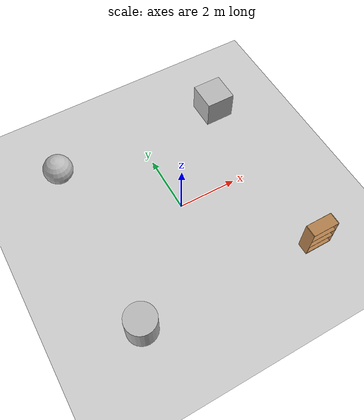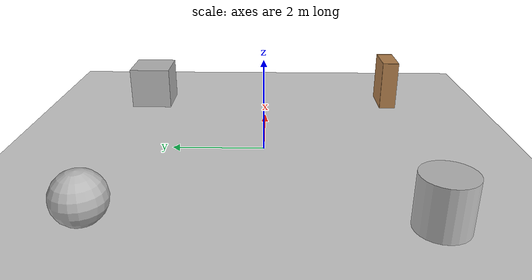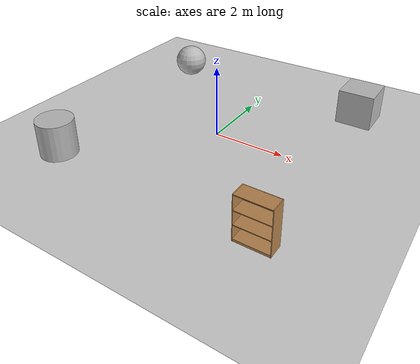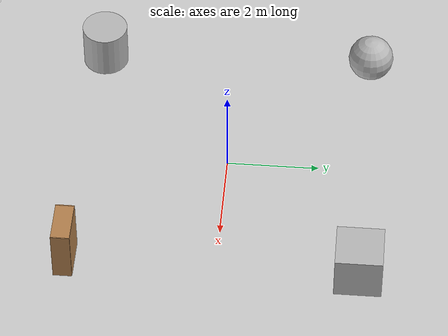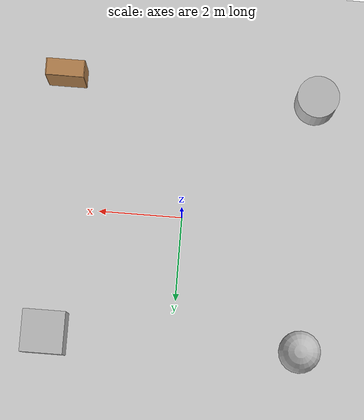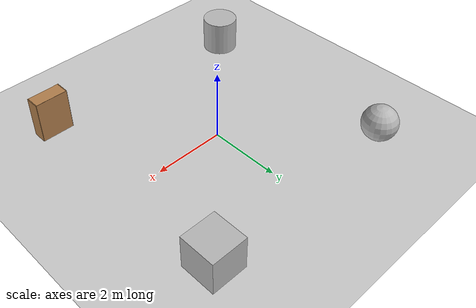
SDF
<sdf version='1.4'>
  <world name='default'>
    <physics type="ode">
      <gravity>0 0 -9.81</gravity>
      <ode>
        <solver>
          <type>quick</type>
          <iters>50</iters>
          <sor>1.4</sor>
        </solver>
        <constraints>
          <cfm>0.0</cfm>
          <erp>0.2</erp>
          <contact_max_correcting_vel>100.0</contact_max_correcting_vel>
          <contact_surface_layer>0.0</contact_surface_layer>
        </constraints>
      </ode>
      <real_time_update_rate>1000.0</real_time_update_rate>
      <max_step_size>0.001</max_step_size>
    </physics>
    <!-- A global light source -->
    <include>
      <uri>model://sun</uri>
    </include>
    <!-- A ground plane -->
    <include>
      <uri>model://ground_plane</uri>
    </include>
    <model name="box">
      <static>1</static>
      <pose>3.0 3.0 0.5 0 0 0</pose>
      <link name="link">
        <collision name="collision">
          <geometry>
            <box>
              <size>1 1 1</size>
            </box>
          </geometry>
        </collision>
        <visual name="visual">
          <geometry>
            <box>
              <size>1 1 1</size>
            </box>
          </geometry>
          <material>
              <uri>file://media/materials/scripts/gazebo.material</uri>
              <name>Gazebo/Wood</name>
          </material>
        </visual>
      </link>
    </model>
    <model name="sphere">
      <static>1</static>
      <pose>-3.0 3.0 0.5 0 0 0</pose>
      <link name="link">
        <collision name="collision">
          <geometry>
            <sphere>
              <radius>0.5</radius>
            </sphere>
          </geometry>
        </collision>
        <visual name="visual">
          <geometry>
            <sphere>
              <radius>0.5</radius>
            </sphere>
          </geometry>
          <material>
            <script>Gazebo/WoodPallet</script>
          </material>
        </visual>
      </link>
    </model>
    <model name="cylinder">
      <static>1</static>
      <pose>-3.0 -3.0 0.5 0 0 0</pose>
      <link name="link">
        <collision name="collision">
          <geometry>
            <cylinder>
              <radius>0.5</radius>
              <length>1.0</length>
            </cylinder>
          </geometry>
        </collision>
        <visual name="visual">
          <geometry>
            <cylinder>
              <radius>0.5</radius>
              <length>1.0</length>
            </cylinder>
          </geometry>
          <material>
              <uri>file://media/materials/scripts/gazebo.material</uri>
              <name>Gazebo/Wood</name>
          </material>
        </visual>
      </link>
    </model>
    <model name='bookshelf'>
      <static>1</static>
      <pose>3.0 -3.0 0.0 0 0 0</pose>
      <link name='link'>
        <inertial>
          <mass>1</mass>
        </inertial>
        <collision name='back'>
          <pose>0 0.005 0.6 0 -0 0</pose>
          <geometry>
            <box>
              <size>0.9 0.01 1.2</size>
            </box>
          </geometry>
          <max_contacts>10</max_contacts>
          <surface>
            <bounce/>
            <friction>
              <ode/>
            </friction>
            <contact>
              <ode/>
            </contact>
          </surface>
        </collision>
        <visual name='visual1'>
          <pose>0 0.005 0.6 0 -0 0</pose>
          <geometry>
            <box>
              <size>0.9 0.01 1.2</size>
            </box>
          </geometry>
          <material>
            <script>
              <uri>file://media/materials/scripts/gazebo.material</uri>
              <name>Gazebo/Wood</name>
            </script>
          </material>
        </visual>
        <collision name='left_side'>
          <pose>0.45 -0.195 0.6 0 -0 0</pose>
          <geometry>
            <box>
              <size>0.02 0.4 1.2</size>
            </box>
          </geometry>
          <max_contacts>10</max_contacts>
          <surface>
            <bounce/>
            <friction>
              <ode/>
            </friction>
            <contact>
              <ode/>
            </contact>
          </surface>
        </collision>
        <visual name='visual2'>
          <pose>0.45 -0.195 0.6 0 -0 0</pose>
          <geometry>
            <box>
              <size>0.02 0.4 1.2</size>
            </box>
          </geometry>
          <material>
            <script>
              <uri>file://media/materials/scripts/gazebo.material</uri>
              <name>Gazebo/Wood</name>
            </script>
          </material>
        </visual>
        <collision name='right_side'>
          <pose>-0.45 -0.195 0.6 0 -0 0</pose>
          <geometry>
            <box>
              <size>0.02 0.4 1.2</size>
            </box>
          </geometry>
          <max_contacts>10</max_contacts>
          <surface>
            <bounce/>
            <friction>
              <ode/>
            </friction>
            <contact>
              <ode/>
            </contact>
          </surface>
        </collision>
        <visual name='visual3'>
          <pose>-0.45 -0.195 0.6 0 -0 0</pose>
          <geometry>
            <box>
              <size>0.02 0.4 1.2</size>
            </box>
          </geometry>
          <material>
            <script>
              <uri>file://media/materials/scripts/gazebo.material</uri>
              <name>Gazebo/Wood</name>
            </script>
          </material>
        </visual>
        <collision name='bottom'>
          <pose>0 -0.195 0.03 0 -0 0</pose>
          <geometry>
            <box>
              <size>0.88 0.4 0.06</size>
            </box>
          </geometry>
          <max_contacts>10</max_contacts>
          <surface>
            <bounce/>
            <friction>
              <ode/>
            </friction>
            <contact>
              <ode/>
            </contact>
          </surface>
        </collision>
        <visual name='visual4'>
          <pose>0 -0.195 0.03 0 -0 0</pose>
          <geometry>
            <box>
              <size>0.88 0.4 0.06</size>
            </box>
          </geometry>
          <material>
            <script>
              <uri>file://media/materials/scripts/gazebo.material</uri>
              <name>Gazebo/Wood</name>
            </script>
          </material>
        </visual>
        <collision name='top'>
          <pose>0 -0.195 1.19 0 -0 0</pose>
          <geometry>
            <box>
              <size>0.88 0.4 0.02</size>
            </box>
          </geometry>
          <max_contacts>10</max_contacts>
          <surface>
            <bounce/>
            <friction>
              <ode/>
            </friction>
            <contact>
              <ode/>
            </contact>
          </surface>
        </collision>
        <visual name='visual5'>
          <pose>0 -0.195 1.19 0 -0 0</pose>
          <geometry>
            <box>
              <size>0.88 0.4 0.02</size>
            </box>
          </geometry>
          <material>
            <script>
              <uri>file://media/materials/scripts/gazebo.material</uri>
              <name>Gazebo/Wood</name>
            </script>
          </material>
        </visual>
        <collision name='low_shelf'>
          <pose>0 -0.195 0.43 0 -0 0</pose>
          <geometry>
            <box>
              <size>0.88 0.4 0.02</size>
            </box>
          </geometry>
          <max_contacts>10</max_contacts>
          <surface>
            <bounce/>
            <friction>
              <ode/>
            </friction>
            <contact>
              <ode/>
            </contact>
          </surface>
        </collision>
        <visual name='visual6'>
          <pose>0 -0.195 0.43 0 -0 0</pose>
          <geometry>
            <box>
              <size>0.88 0.4 0.02</size>
            </box>
          </geometry>
          <material>
            <script>
              <uri>file://media/materials/scripts/gazebo.material</uri>
              <name>Gazebo/Wood</name>
            </script>
          </material>
        </visual>
        <collision name='high_shelf'>
          <pose>0 -0.195 0.8 0 -0 0</pose>
          <geometry>
            <box>
              <size>0.88 0.4 0.02</size>
            </box>
          </geometry>
          <max_contacts>10</max_contacts>
          <surface>
            <bounce/>
            <friction>
              <ode/>
            </friction>
            <contact>
              <ode/>
            </contact>
          </surface>
        </collision>
        <visual name='visual7'>
          <pose>0 -0.195 0.8 0 -0 0</pose>
          <geometry>
            <box>
              <size>0.88 0.4 0.02</size>
            </box>
          </geometry>
          <material>
            <script>
              <uri>file://media/materials/scripts/gazebo.material</uri>
              <name>Gazebo/Wood</name>
            </script>
          </material>
        </visual>
        <velocity_decay>
          <linear>0</linear>
          <angular>0</angular>
        </velocity_decay>
        <self_collide>0</self_collide>
        <kinematic>0</kinematic>
        <gravity>1</gravity>
      </link>
      <pose>0 1.53026 0 0 -0 0</pose>
    </model>
    <gui fullscreen='0'>
      <camera name='user_camera'>
        <pose>1.33336 -0.422442 27.6101 3e-06 1.5698 3.04015</pose>
        <view_controller>orbit</view_controller>
      </camera>
    </gui>
  </world>
</sdf>
